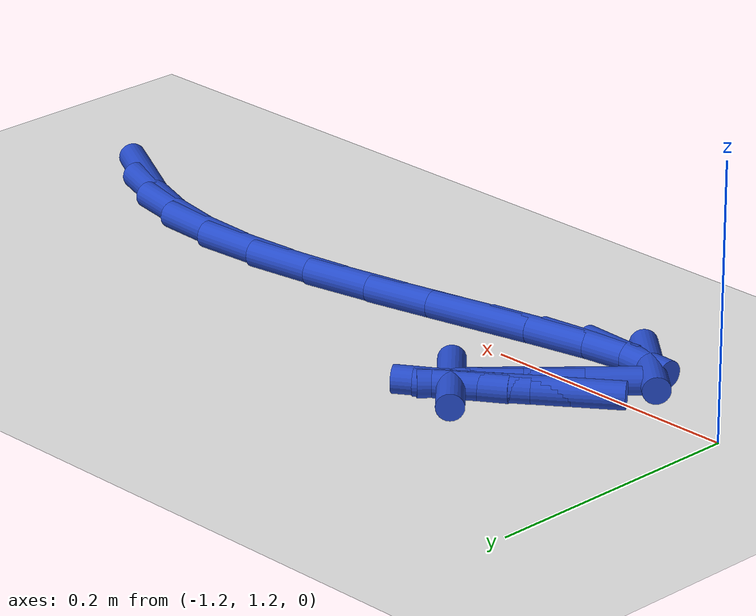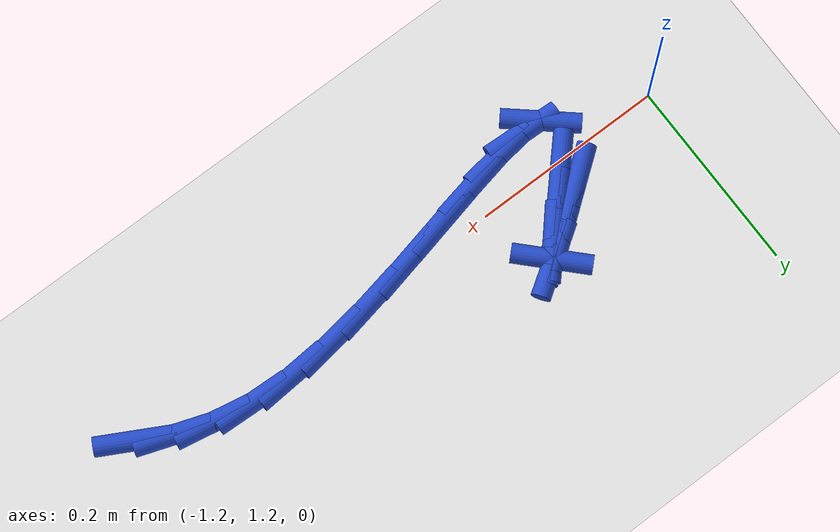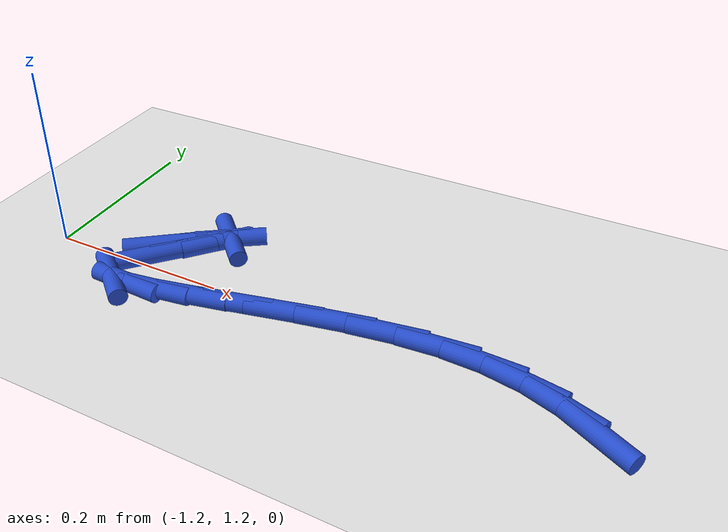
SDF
<sdf version="1.6">
 <world name="default">
  <model name="ground_plane">
   <static>1</static>
   <link name="link">
    <collision name="collision">
     <geometry><plane><normal>0 0 1</normal><size>100 100</size></plane></geometry>
     <surface><friction><ode><mu>100</mu><mu2>50</mu2></ode></friction></surface>
    </collision>
    <visual name="visual">
     <cast_shadows>0</cast_shadows>
     <geometry><plane><normal>0 0 1</normal><size>100 100</size></plane></geometry>
     <material>
      <script><uri>file://media/materials/scripts/gazebo.material</uri><name>Gazebo/WhiteGlow</name></script>
     </material>
    </visual>
   </link>
  </model>
  <model name="line">
   <link name="link_39">
    <pose>-0.6024710296018695 1.1736497489292526 0.01 0 1.57 -0.492629651869623</pose>
    <collision name="collision">
     <geometry><cylinder><radius>0.01</radius><length>0.08</length></cylinder></geometry>
    </collision>
    <visual name="visual">
     <material>
      <script><name>Gazebo/Blue</name><uri>file://media/materials/scripts/gazebo.material</uri></script>
     </material>
     <geometry><cylinder><radius>0.01</radius><length>0.08</length></cylinder></geometry>
    </visual>
   </link>
   <link name="link_40">
    <pose>-0.6350724915322651 1.1911492582871874 0.01 0 1.57 -0.3350999762518501</pose>
    <collision name="collision">
     <geometry><cylinder><radius>0.01</radius><length>0.08</length></cylinder></geometry>
    </collision>
    <visual name="visual">
     <material>
      <script><name>Gazebo/Blue</name><uri>file://media/materials/scripts/gazebo.material</uri></script>
     </material>
     <geometry><cylinder><radius>0.01</radius><length>0.08</length></cylinder></geometry>
    </visual>
   </link>
   <link name="link_41">
    <pose>-0.6716973067473939 1.2039032352905856 0.01 0 1.57 -0.18232529884809962</pose>
    <collision name="collision">
     <geometry><cylinder><radius>0.01</radius><length>0.08</length></cylinder></geometry>
    </collision>
    <visual name="visual">
     <material>
      <script><name>Gazebo/Blue</name><uri>file://media/materials/scripts/gazebo.material</uri></script>
     </material>
     <geometry><cylinder><radius>0.01</radius><length>0.08</length></cylinder></geometry>
    </visual>
   </link>
   <link name="link_42">
    <pose>-0.7125864754636595 1.2114420877200485 0.01 0 1.57 -0.040905578266627024</pose>
    <collision name="collision">
     <geometry><cylinder><radius>0.01</radius><length>0.08</length></cylinder></geometry>
    </collision>
    <visual name="visual">
     <material>
      <script><name>Gazebo/Blue</name><uri>file://media/materials/scripts/gazebo.material</uri></script>
     </material>
     <geometry><cylinder><radius>0.01</radius><length>0.08</length></cylinder></geometry>
    </visual>
   </link>
   <link name="link_43">
    <pose>-0.7579769598924062 1.2132998480249382 0.01 0 1.57 0.07429336983838616</pose>
    <collision name="collision">
     <geometry><cylinder><radius>0.01</radius><length>0.08</length></cylinder></geometry>
    </collision>
    <visual name="visual">
     <material>
      <script><name>Gazebo/Blue</name><uri>file://media/materials/scripts/gazebo.material</uri></script>
     </material>
     <geometry><cylinder><radius>0.01</radius><length>0.08</length></cylinder></geometry>
    </visual>
   </link>
   <link name="link_44">
    <pose>-0.8074276463970875 1.2096192156345396 0.01 0 1.57 0.1497238501654045</pose>
    <collision name="collision">
     <geometry><cylinder><radius>0.01</radius><length>0.08</length></cylinder></geometry>
    </collision>
    <visual name="visual">
     <material>
      <script><name>Gazebo/Blue</name><uri>file://media/materials/scripts/gazebo.material</uri></script>
     </material>
     <geometry><cylinder><radius>0.01</radius><length>0.08</length></cylinder></geometry>
    </visual>
   </link>
   <link name="link_45">
    <pose>-0.859063806638081 1.2018297577148511 0.01 0 1.57 0.19650721051475933</pose>
    <collision name="collision">
     <geometry><cylinder><radius>0.01</radius><length>0.08</length></cylinder></geometry>
    </collision>
    <visual name="visual">
     <material>
      <script><name>Gazebo/Blue</name><uri>file://media/materials/scripts/gazebo.material</uri></script>
     </material>
     <geometry><cylinder><radius>0.01</radius><length>0.08</length></cylinder></geometry>
    </visual>
   </link>
   <link name="link_46">
    <pose>-0.9108284528862703 1.1915246444749679 0.01 0 1.57 0.22159070632483877</pose>
    <collision name="collision">
     <geometry><cylinder><radius>0.01</radius><length>0.08</length></cylinder></geometry>
    </collision>
    <visual name="visual">
     <material>
      <script><name>Gazebo/Blue</name><uri>file://media/materials/scripts/gazebo.material</uri></script>
     </material>
     <geometry><cylinder><radius>0.01</radius><length>0.08</length></cylinder></geometry>
    </visual>
   </link>
   <link name="link_47">
    <pose>-0.9606645974125405 1.1802970461239826 0.01 0 1.57 0.2263016704757438</pose>
    <collision name="collision">
     <geometry><cylinder><radius>0.01</radius><length>0.08</length></cylinder></geometry>
    </collision>
    <visual name="visual">
     <material>
      <script><name>Gazebo/Blue</name><uri>file://media/materials/scripts/gazebo.material</uri></script>
     </material>
     <geometry><cylinder><radius>0.01</radius><length>0.08</length></cylinder></geometry>
    </visual>
   </link>
   <link name="link_48">
    <pose>-1.0065152524877758 1.1697401328709907 0.01 0 1.57 0.2053878668074822</pose>
    <collision name="collision">
     <geometry><cylinder><radius>0.01</radius><length>0.08</length></cylinder></geometry>
    </collision>
    <visual name="visual">
     <material>
      <script><name>Gazebo/Blue</name><uri>file://media/materials/scripts/gazebo.material</uri></script>
     </material>
     <geometry><cylinder><radius>0.01</radius><length>0.08</length></cylinder></geometry>
    </visual>
   </link>
   <link name="link_49">
    <pose>-1.0463234303828606 1.161447074925087 0.01 0 1.57 0.13899735155981005</pose>
    <collision name="collision">
     <geometry><cylinder><radius>0.01</radius><length>0.08</length></cylinder></geometry>
    </collision>
    <visual name="visual">
     <material>
      <script><name>Gazebo/Blue</name><uri>file://media/materials/scripts/gazebo.material</uri></script>
     </material>
     <geometry><cylinder><radius>0.01</radius><length>0.08</length></cylinder></geometry>
    </visual>
   </link>
   <link name="link_50">
    <pose>-1.0780321433686788 1.157011042495364 0.01 0 1.57 -0.047021320692922385</pose>
    <collision name="collision">
     <geometry><cylinder><radius>0.01</radius><length>0.08</length></cylinder></geometry>
    </collision>
    <visual name="visual">
     <material>
      <script><name>Gazebo/Blue</name><uri>file://media/materials/scripts/gazebo.material</uri></script>
     </material>
     <geometry><cylinder><radius>0.01</radius><length>0.08</length></cylinder></geometry>
    </visual>
   </link>
   <link name="link_51">
    <pose>-1.0995844037161158 1.158025205790918 0.01 0 1.57 -0.7118780612363667</pose>
    <collision name="collision">
     <geometry><cylinder><radius>0.01</radius><length>0.08</length></cylinder></geometry>
    </collision>
    <visual name="visual">
     <material>
      <script><name>Gazebo/Blue</name><uri>file://media/materials/scripts/gazebo.material</uri></script>
     </material>
     <geometry><cylinder><radius>0.01</radius><length>0.08</length></cylinder></geometry>
    </visual>
   </link>
   <link name="link_54">
    <pose>-1.0844636825280243 1.2083782033325576 0.01 0 1.57 0.8265547010551558</pose>
    <collision name="collision">
     <geometry><cylinder><radius>0.01</radius><length>0.08</length></cylinder></geometry>
    </collision>
    <visual name="visual">
     <material>
      <script><name>Gazebo/Blue</name><uri>file://media/materials/scripts/gazebo.material</uri></script>
     </material>
     <geometry><cylinder><radius>0.01</radius><length>0.08</length></cylinder></geometry>
    </visual>
   </link>
   <link name="link_55">
    <pose>-1.0581804298343038 1.2369191031821296 0.01 0 1.57 0.8044011865111247</pose>
    <collision name="collision">
     <geometry><cylinder><radius>0.01</radius><length>0.08</length></cylinder></geometry>
    </collision>
    <visual name="visual">
     <material>
      <script><name>Gazebo/Blue</name><uri>file://media/materials/scripts/gazebo.material</uri></script>
     </material>
     <geometry><cylinder><radius>0.01</radius><length>0.08</length></cylinder></geometry>
    </visual>
   </link>
   <link name="link_56">
    <pose>-1.0353890214815114 1.2605936107110665 0.01 0 1.57 0.8521151460480642</pose>
    <collision name="collision">
     <geometry><cylinder><radius>0.01</radius><length>0.08</length></cylinder></geometry>
    </collision>
    <visual name="visual">
     <material>
      <script><name>Gazebo/Blue</name><uri>file://media/materials/scripts/gazebo.material</uri></script>
     </material>
     <geometry><cylinder><radius>0.01</radius><length>0.08</length></cylinder></geometry>
    </visual>
   </link>
   <link name="link_57">
    <pose>-1.0244231020954433 1.2731298540933953 0.01 0 1.57 -0.8008958933208356</pose>
    <collision name="collision">
     <geometry><cylinder><radius>0.01</radius><length>0.08</length></cylinder></geometry>
    </collision>
    <visual name="visual">
     <material>
      <script><name>Gazebo/Blue</name><uri>file://media/materials/scripts/gazebo.material</uri></script>
     </material>
     <geometry><cylinder><radius>0.01</radius><length>0.08</length></cylinder></geometry>
    </visual>
   </link>
   <link name="link_58">
    <pose>-1.0257846910530326 1.274534313960926 0.01 0 1.57 0.5874172456001568</pose>
    <collision name="collision">
     <geometry><cylinder><radius>0.01</radius><length>0.08</length></cylinder></geometry>
    </collision>
    <visual name="visual">
     <material>
      <script><name>Gazebo/Blue</name><uri>file://media/materials/scripts/gazebo.material</uri></script>
     </material>
     <geometry><cylinder><radius>0.01</radius><length>0.08</length></cylinder></geometry>
    </visual>
   </link>
   <link name="link_59">
    <pose>-1.037972845127066 1.2664191791846888 0.01 0 1.57 0.6401372926653841</pose>
    <collision name="collision">
     <geometry><cylinder><radius>0.01</radius><length>0.08</length></cylinder></geometry>
    </collision>
    <visual name="visual">
     <material>
      <script><name>Gazebo/Blue</name><uri>file://media/materials/scripts/gazebo.material</uri></script>
     </material>
     <geometry><cylinder><radius>0.01</radius><length>0.08</length></cylinder></geometry>
    </visual>
   </link>
   <link name="link_60">
    <pose>-1.059486620236054 1.250396639320557 0.01 0 1.57 0.650313901921996</pose>
    <collision name="collision">
     <geometry><cylinder><radius>0.01</radius><length>0.08</length></cylinder></geometry>
    </collision>
    <visual name="visual">
     <material>
      <script><name>Gazebo/Blue</name><uri>file://media/materials/scripts/gazebo.material</uri></script>
     </material>
     <geometry><cylinder><radius>0.01</radius><length>0.08</length></cylinder></geometry>
    </visual>
   </link>
   <link name="link_61">
    <pose>-1.0888250722985071 1.2280788839244055 0.01 0 1.57 0.6480464195855881</pose>
    <collision name="collision">
     <geometry><cylinder><radius>0.01</radius><length>0.08</length></cylinder></geometry>
    </collision>
    <visual name="visual">
     <material>
      <script><name>Gazebo/Blue</name><uri>file://media/materials/scripts/gazebo.material</uri></script>
     </material>
     <geometry><cylinder><radius>0.01</radius><length>0.08</length></cylinder></geometry>
    </visual>
   </link>
  </model>
 </world>
</sdf>
